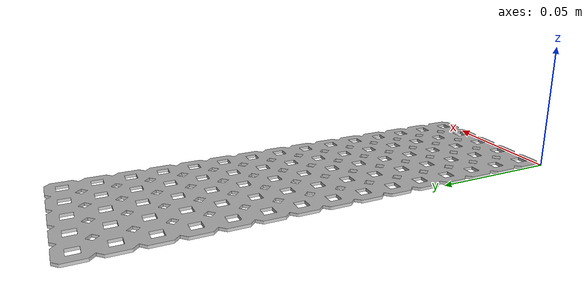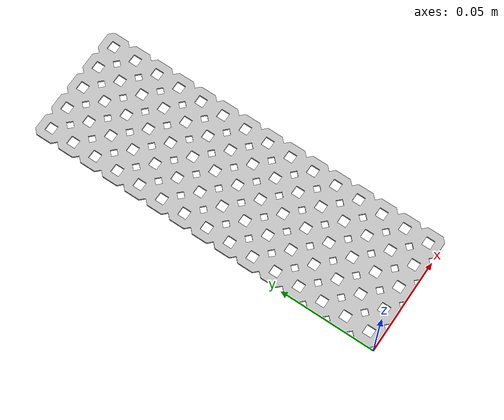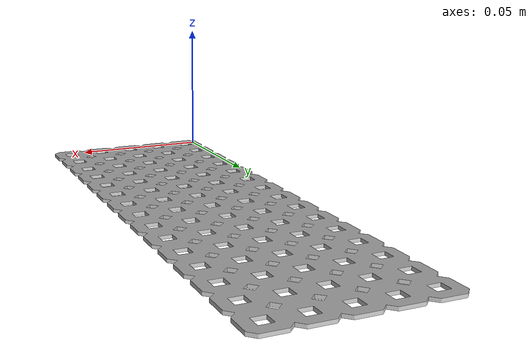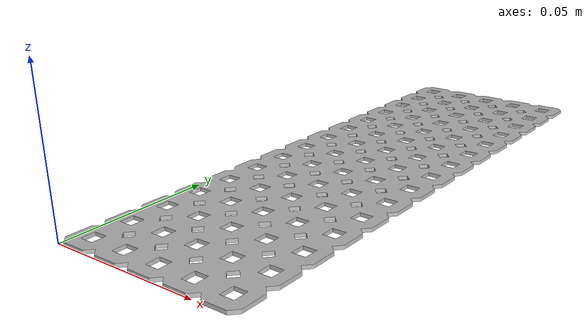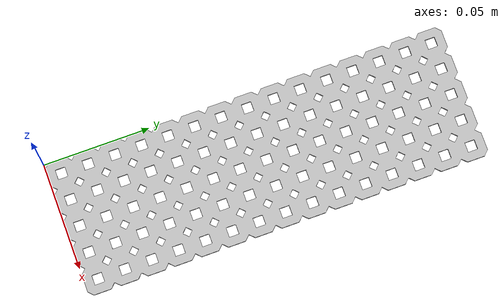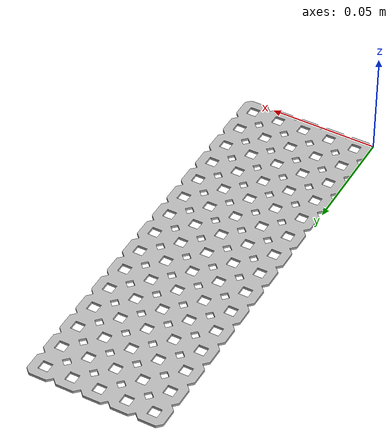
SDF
<?xml version='1.0'?>
<sdf version="1.4">
	<model name="Plate_15x5">
		<pose>0 0 0 0 0 0</pose>
		<static>true</static>
		<link name="body">
			<inertial>
				<pose>0.031750 0.095249 0.000584 0 0 0</pose>
				<mass>0.060781378</mass>
				<inertia>
					<ixx>0.00000003433</ixx>
					<ixy>0</ixy>
					<ixz>0</ixz>
					<iyy>0.00000000382</iyy>
					<iyz>0</iyz>
					<izz>0.00000003814</izz>
				</inertia>
			</inertial>
			<collision name="collision">
				<geometry>
					<box>
						<size>0.063499 0.190498 0.001168</size>
					</box>
				</geometry>
			</collision>
			<visual name="visual">
				<geometry>
					<mesh><uri>model://Plate_15x5/Plate_15x5.dae</uri></mesh>
				</geometry>
			</visual>
		</link>
	</model>
</sdf>
